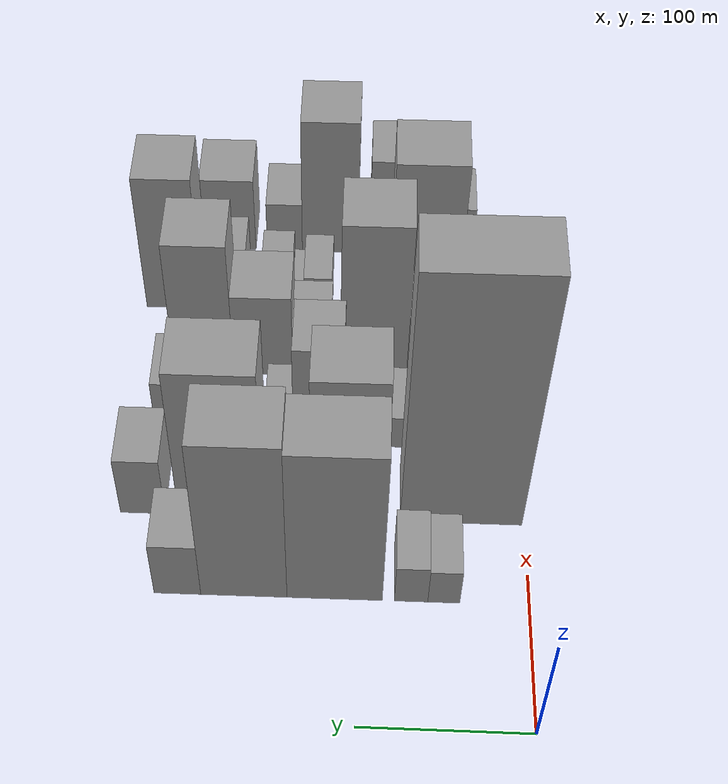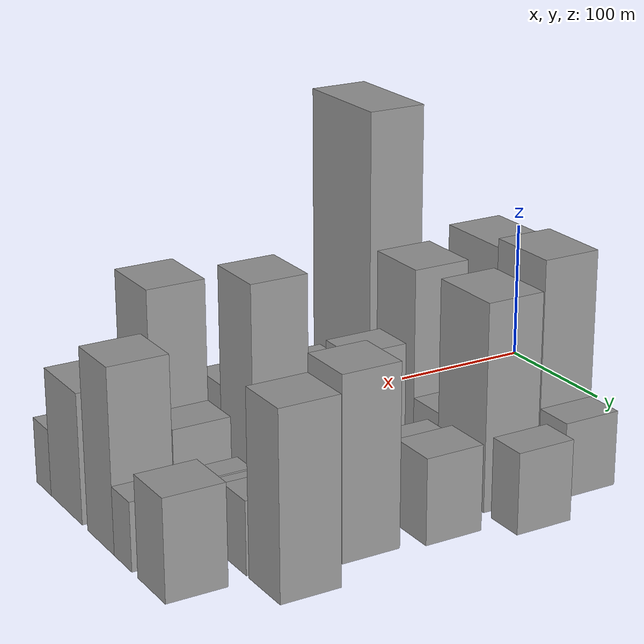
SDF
<sdf version="1.6">
 <world name="default">
  <model name="building_23">
   <static>1</static>
   <pose>100.0000 49.8921 0 0.000000 0.000000 0.000000</pose>
   <link name="link">
    <pose>0 0 16.50 0 0 0</pose>
    <collision name="collision"><geometry><box><size>40.0000 18.6336 33.0000</size></box></geometry></collision>
    <visual name="visual">
     <cast_shadows>0</cast_shadows>
     <geometry><box><size>40.0000 18.6336 33.0000</size></box></geometry>
     <material>
      <script>
       <uri>model://grey_wall/materials/scripts</uri>
       <uri>model://grey_wall/materials/textures</uri>
       <name>vrc/grey_wall</name>
      </script>
     </material>
    </visual>
   </link>
  </model>
  <model name="building_24">
   <static>1</static>
   <pose>100.0000 68.9714 0 0.000000 0.000000 0.000000</pose>
   <link name="link">
    <pose>0 0 18.00 0 0 0</pose>
    <collision name="collision"><geometry><box><size>40.0000 19.5249 36.0000</size></box></geometry></collision>
    <visual name="visual">
     <cast_shadows>0</cast_shadows>
     <geometry><box><size>40.0000 19.5249 36.0000</size></box></geometry>
     <material>
      <script>
       <uri>model://grey_wall/materials/scripts</uri>
       <uri>model://grey_wall/materials/textures</uri>
       <name>vrc/grey_wall</name>
      </script>
     </material>
    </visual>
   </link>
  </model>
  <model name="building_25">
   <static>1</static>
   <pose>100.0000 113.5776 0 0.000000 0.000000 0.000000</pose>
   <link name="link">
    <pose>0 0 72.00 0 0 0</pose>
    <collision name="collision"><geometry><box><size>40.0000 55.6874 144.0000</size></box></geometry></collision>
    <visual name="visual">
     <cast_shadows>0</cast_shadows>
     <geometry><box><size>40.0000 55.6874 144.0000</size></box></geometry>
     <material>
      <script>
       <uri>model://grey_wall/materials/scripts</uri>
       <uri>model://grey_wall/materials/textures</uri>
       <name>vrc/grey_wall</name>
      </script>
     </material>
    </visual>
   </link>
  </model>
  <model name="building_26">
   <static>1</static>
   <pose>100.0000 166.6663 0 0.000000 0.000000 0.000000</pose>
   <link name="link">
    <pose>0 0 75.00 0 0 0</pose>
    <collision name="collision"><geometry><box><size>40.0000 50.4901 150.0000</size></box></geometry></collision>
    <visual name="visual">
     <cast_shadows>0</cast_shadows>
     <geometry><box><size>40.0000 50.4901 150.0000</size></box></geometry>
     <material>
      <script>
       <uri>model://grey_wall/materials/scripts</uri>
       <uri>model://grey_wall/materials/textures</uri>
       <name>vrc/grey_wall</name>
      </script>
     </material>
    </visual>
   </link>
  </model>
  <model name="building_27">
   <static>1</static>
   <pose>100.0000 205.6077 0 0.000000 0.000000 0.000000</pose>
   <link name="link">
    <pose>0 0 25.50 0 0 0</pose>
    <collision name="collision"><geometry><box><size>40.0000 27.3926 51.0000</size></box></geometry></collision>
    <visual name="visual">
     <cast_shadows>0</cast_shadows>
     <geometry><box><size>40.0000 27.3926 51.0000</size></box></geometry>
     <material>
      <script>
       <uri>model://grey_wall/materials/scripts</uri>
       <uri>model://grey_wall/materials/textures</uri>
       <name>vrc/grey_wall</name>
      </script>
     </material>
    </visual>
   </link>
  </model>
  <model name="building_70">
   <static>1</static>
   <pose>155.0000 38.9097 0 0.000000 0.000000 0.000000</pose>
   <link name="link">
    <pose>0 0 112.50 0 0 0</pose>
    <collision name="collision"><geometry><box><size>40.0000 73.7201 225.0000</size></box></geometry></collision>
    <visual name="visual">
     <cast_shadows>0</cast_shadows>
     <geometry><box><size>40.0000 73.7201 225.0000</size></box></geometry>
     <material>
      <script>
       <uri>model://grey_wall/materials/scripts</uri>
       <uri>model://grey_wall/materials/textures</uri>
       <name>vrc/grey_wall</name>
      </script>
     </material>
    </visual>
   </link>
  </model>
  <model name="building_71">
   <static>1</static>
   <pose>155.0000 107.3649 0 0.000000 0.000000 0.000000</pose>
   <link name="link">
    <pose>0 0 67.50 0 0 0</pose>
    <collision name="collision"><geometry><box><size>40.0000 45.1902 135.0000</size></box></geometry></collision>
    <visual name="visual">
     <cast_shadows>0</cast_shadows>
     <geometry><box><size>40.0000 45.1902 135.0000</size></box></geometry>
     <material>
      <script>
       <uri>model://grey_wall/materials/scripts</uri>
       <uri>model://grey_wall/materials/textures</uri>
       <name>vrc/grey_wall</name>
      </script>
     </material>
    </visual>
   </link>
  </model>
  <model name="building_72">
   <static>1</static>
   <pose>155.0000 144.3162 0 0.000000 0.000000 0.000000</pose>
   <link name="link">
    <pose>0 0 24.00 0 0 0</pose>
    <collision name="collision"><geometry><box><size>40.0000 28.7124 48.0000</size></box></geometry></collision>
    <visual name="visual">
     <cast_shadows>0</cast_shadows>
     <geometry><box><size>40.0000 28.7124 48.0000</size></box></geometry>
     <material>
      <script>
       <uri>model://grey_wall/materials/scripts</uri>
       <uri>model://grey_wall/materials/textures</uri>
       <name>vrc/grey_wall</name>
      </script>
     </material>
    </visual>
   </link>
  </model>
  <model name="building_73">
   <static>1</static>
   <pose>155.0000 184.5461 0 0.000000 0.000000 0.000000</pose>
   <link name="link">
    <pose>0 0 69.00 0 0 0</pose>
    <collision name="collision"><geometry><box><size>40.0000 51.7474 138.0000</size></box></geometry></collision>
    <visual name="visual">
     <cast_shadows>0</cast_shadows>
     <geometry><box><size>40.0000 51.7474 138.0000</size></box></geometry>
     <material>
      <script>
       <uri>model://grey_wall/materials/scripts</uri>
       <uri>model://grey_wall/materials/textures</uri>
       <name>vrc/grey_wall</name>
      </script>
     </material>
    </visual>
   </link>
  </model>
  <model name="building_74">
   <static>1</static>
   <pose>155.0000 232.0547 0 0.000000 0.000000 0.000000</pose>
   <link name="link">
    <pose>0 0 27.00 0 0 0</pose>
    <collision name="collision"><geometry><box><size>40.0000 27.2698 54.0000</size></box></geometry></collision>
    <visual name="visual">
     <cast_shadows>0</cast_shadows>
     <geometry><box><size>40.0000 27.2698 54.0000</size></box></geometry>
     <material>
      <script>
       <uri>model://grey_wall/materials/scripts</uri>
       <uri>model://grey_wall/materials/textures</uri>
       <name>vrc/grey_wall</name>
      </script>
     </material>
    </visual>
   </link>
  </model>
  <model name="building_119">
   <static>1</static>
   <pose>210.0000 31.9395 0 0.000000 0.000000 0.000000</pose>
   <link name="link">
    <pose>0 0 10.50 0 0 0</pose>
    <collision name="collision"><geometry><box><size>40.0000 8.4840 21.0000</size></box></geometry></collision>
    <visual name="visual">
     <cast_shadows>0</cast_shadows>
     <geometry><box><size>40.0000 8.4840 21.0000</size></box></geometry>
     <material>
      <script>
       <uri>model://grey_wall/materials/scripts</uri>
       <uri>model://grey_wall/materials/textures</uri>
       <name>vrc/grey_wall</name>
      </script>
     </material>
    </visual>
   </link>
  </model>
  <model name="building_120">
   <static>1</static>
   <pose>210.0000 50.5265 0 0.000000 0.000000 0.000000</pose>
   <link name="link">
    <pose>0 0 28.50 0 0 0</pose>
    <collision name="collision"><geometry><box><size>40.0000 28.6899 57.0000</size></box></geometry></collision>
    <visual name="visual">
     <cast_shadows>0</cast_shadows>
     <geometry><box><size>40.0000 28.6899 57.0000</size></box></geometry>
     <material>
      <script>
       <uri>model://grey_wall/materials/scripts</uri>
       <uri>model://grey_wall/materials/textures</uri>
       <name>vrc/grey_wall</name>
      </script>
     </material>
    </visual>
   </link>
  </model>
  <model name="building_121">
   <static>1</static>
   <pose>210.0000 67.8872 0 0.000000 0.000000 0.000000</pose>
   <link name="link">
    <pose>0 0 7.50 0 0 0</pose>
    <collision name="collision"><geometry><box><size>40.0000 6.0315 15.0000</size></box></geometry></collision>
    <visual name="visual">
     <cast_shadows>0</cast_shadows>
     <geometry><box><size>40.0000 6.0315 15.0000</size></box></geometry>
     <material>
      <script>
       <uri>model://grey_wall/materials/scripts</uri>
       <uri>model://grey_wall/materials/textures</uri>
       <name>vrc/grey_wall</name>
      </script>
     </material>
    </visual>
   </link>
  </model>
  <model name="building_122">
   <static>1</static>
   <pose>210.0000 79.7839 0 0.000000 0.000000 0.000000</pose>
   <link name="link">
    <pose>0 0 15.00 0 0 0</pose>
    <collision name="collision"><geometry><box><size>40.0000 17.7620 30.0000</size></box></geometry></collision>
    <visual name="visual">
     <cast_shadows>0</cast_shadows>
     <geometry><box><size>40.0000 17.7620 30.0000</size></box></geometry>
     <material>
      <script>
       <uri>model://grey_wall/materials/scripts</uri>
       <uri>model://grey_wall/materials/textures</uri>
       <name>vrc/grey_wall</name>
      </script>
     </material>
    </visual>
   </link>
  </model>
  <model name="building_123">
   <static>1</static>
   <pose>210.0000 100.3400 0 0.000000 0.000000 0.000000</pose>
   <link name="link">
    <pose>0 0 22.50 0 0 0</pose>
    <collision name="collision"><geometry><box><size>40.0000 23.3502 45.0000</size></box></geometry></collision>
    <visual name="visual">
     <cast_shadows>0</cast_shadows>
     <geometry><box><size>40.0000 23.3502 45.0000</size></box></geometry>
     <material>
      <script>
       <uri>model://grey_wall/materials/scripts</uri>
       <uri>model://grey_wall/materials/textures</uri>
       <name>vrc/grey_wall</name>
      </script>
     </material>
    </visual>
   </link>
  </model>
  <model name="building_124">
   <static>1</static>
   <pose>210.0000 127.5048 0 0.000000 0.000000 0.000000</pose>
   <link name="link">
    <pose>0 0 46.50 0 0 0</pose>
    <collision name="collision"><geometry><box><size>40.0000 30.9794 93.0000</size></box></geometry></collision>
    <visual name="visual">
     <cast_shadows>0</cast_shadows>
     <geometry><box><size>40.0000 30.9794 93.0000</size></box></geometry>
     <material>
      <script>
       <uri>model://grey_wall/materials/scripts</uri>
       <uri>model://grey_wall/materials/textures</uri>
       <name>vrc/grey_wall</name>
      </script>
     </material>
    </visual>
   </link>
  </model>
  <model name="building_125">
   <static>1</static>
   <pose>210.0000 151.8502 0 0.000000 0.000000 0.000000</pose>
   <link name="link">
    <pose>0 0 15.00 0 0 0</pose>
    <collision name="collision"><geometry><box><size>40.0000 17.7114 30.0000</size></box></geometry></collision>
    <visual name="visual">
     <cast_shadows>0</cast_shadows>
     <geometry><box><size>40.0000 17.7114 30.0000</size></box></geometry>
     <material>
      <script>
       <uri>model://grey_wall/materials/scripts</uri>
       <uri>model://grey_wall/materials/textures</uri>
       <name>vrc/grey_wall</name>
      </script>
     </material>
    </visual>
   </link>
  </model>
  <model name="building_126">
   <static>1</static>
   <pose>210.0000 182.2694 0 0.000000 0.000000 0.000000</pose>
   <link name="link">
    <pose>0 0 25.50 0 0 0</pose>
    <collision name="collision"><geometry><box><size>40.0000 27.1270 51.0000</size></box></geometry></collision>
    <visual name="visual">
     <cast_shadows>0</cast_shadows>
     <geometry><box><size>40.0000 27.1270 51.0000</size></box></geometry>
     <material>
      <script>
       <uri>model://grey_wall/materials/scripts</uri>
       <uri>model://grey_wall/materials/textures</uri>
       <name>vrc/grey_wall</name>
      </script>
     </material>
    </visual>
   </link>
  </model>
  <model name="building_127">
   <static>1</static>
   <pose>210.0000 212.5537 0 0.000000 0.000000 0.000000</pose>
   <link name="link">
    <pose>0 0 28.50 0 0 0</pose>
    <collision name="collision"><geometry><box><size>40.0000 33.4415 57.0000</size></box></geometry></collision>
    <visual name="visual">
     <cast_shadows>0</cast_shadows>
     <geometry><box><size>40.0000 33.4415 57.0000</size></box></geometry>
     <material>
      <script>
       <uri>model://grey_wall/materials/scripts</uri>
       <uri>model://grey_wall/materials/textures</uri>
       <name>vrc/grey_wall</name>
      </script>
     </material>
    </visual>
   </link>
  </model>
  <model name="building_173">
   <static>1</static>
   <pose>265.0000 56.0474 0 0.000000 0.000000 0.000000</pose>
   <link name="link">
    <pose>0 0 30.00 0 0 0</pose>
    <collision name="collision"><geometry><box><size>40.0000 32.6725 60.0000</size></box></geometry></collision>
    <visual name="visual">
     <cast_shadows>0</cast_shadows>
     <geometry><box><size>40.0000 32.6725 60.0000</size></box></geometry>
     <material>
      <script>
       <uri>model://grey_wall/materials/scripts</uri>
       <uri>model://grey_wall/materials/textures</uri>
       <name>vrc/grey_wall</name>
      </script>
     </material>
    </visual>
   </link>
  </model>
  <model name="building_174">
   <static>1</static>
   <pose>265.0000 93.9438 0 0.000000 0.000000 0.000000</pose>
   <link name="link">
    <pose>0 0 70.50 0 0 0</pose>
    <collision name="collision"><geometry><box><size>40.0000 43.1202 141.0000</size></box></geometry></collision>
    <visual name="visual">
     <cast_shadows>0</cast_shadows>
     <geometry><box><size>40.0000 43.1202 141.0000</size></box></geometry>
     <material>
      <script>
       <uri>model://grey_wall/materials/scripts</uri>
       <uri>model://grey_wall/materials/textures</uri>
       <name>vrc/grey_wall</name>
      </script>
     </material>
    </visual>
   </link>
  </model>
  <model name="building_175">
   <static>1</static>
   <pose>265.0000 133.9131 0 0.000000 0.000000 0.000000</pose>
   <link name="link">
    <pose>0 0 24.00 0 0 0</pose>
    <collision name="collision"><geometry><box><size>40.0000 24.8184 48.0000</size></box></geometry></collision>
    <visual name="visual">
     <cast_shadows>0</cast_shadows>
     <geometry><box><size>40.0000 24.8184 48.0000</size></box></geometry>
     <material>
      <script>
       <uri>model://grey_wall/materials/scripts</uri>
       <uri>model://grey_wall/materials/textures</uri>
       <name>vrc/grey_wall</name>
      </script>
     </material>
    </visual>
   </link>
  </model>
  <model name="building_176">
   <static>1</static>
   <pose>265.0000 165.4641 0 0.000000 0.000000 0.000000</pose>
   <link name="link">
    <pose>0 0 37.50 0 0 0</pose>
    <collision name="collision"><geometry><box><size>40.0000 38.2837 75.0000</size></box></geometry></collision>
    <visual name="visual">
     <cast_shadows>0</cast_shadows>
     <geometry><box><size>40.0000 38.2837 75.0000</size></box></geometry>
     <material>
      <script>
       <uri>model://grey_wall/materials/scripts</uri>
       <uri>model://grey_wall/materials/textures</uri>
       <name>vrc/grey_wall</name>
      </script>
     </material>
    </visual>
   </link>
  </model>
  <model name="building_177">
   <static>1</static>
   <pose>265.0000 204.1315 0 0.000000 0.000000 0.000000</pose>
   <link name="link">
    <pose>0 0 60.00 0 0 0</pose>
    <collision name="collision"><geometry><box><size>40.0000 39.0511 120.0000</size></box></geometry></collision>
    <visual name="visual">
     <cast_shadows>0</cast_shadows>
     <geometry><box><size>40.0000 39.0511 120.0000</size></box></geometry>
     <material>
      <script>
       <uri>model://grey_wall/materials/scripts</uri>
       <uri>model://grey_wall/materials/textures</uri>
       <name>vrc/grey_wall</name>
      </script>
     </material>
    </visual>
   </link>
  </model>
  <model name="building_222">
   <static>1</static>
   <pose>320.0000 29.7980 0 0.000000 0.000000 0.000000</pose>
   <link name="link">
    <pose>0 0 16.50 0 0 0</pose>
    <collision name="collision"><geometry><box><size>40.0000 17.9934 33.0000</size></box></geometry></collision>
    <visual name="visual">
     <cast_shadows>0</cast_shadows>
     <geometry><box><size>40.0000 17.9934 33.0000</size></box></geometry>
     <material>
      <script>
       <uri>model://grey_wall/materials/scripts</uri>
       <uri>model://grey_wall/materials/textures</uri>
       <name>vrc/grey_wall</name>
      </script>
     </material>
    </visual>
   </link>
  </model>
  <model name="building_223">
   <static>1</static>
   <pose>320.0000 61.4986 0 0.000000 0.000000 0.000000</pose>
   <link name="link">
    <pose>0 0 69.00 0 0 0</pose>
    <collision name="collision"><geometry><box><size>40.0000 45.4077 138.0000</size></box></geometry></collision>
    <visual name="visual">
     <cast_shadows>0</cast_shadows>
     <geometry><box><size>40.0000 45.4077 138.0000</size></box></geometry>
     <material>
      <script>
       <uri>model://grey_wall/materials/scripts</uri>
       <uri>model://grey_wall/materials/textures</uri>
       <name>vrc/grey_wall</name>
      </script>
     </material>
    </visual>
   </link>
  </model>
  <model name="building_224">
   <static>1</static>
   <pose>320.0000 99.4336 0 0.000000 0.000000 0.000000</pose>
   <link name="link">
    <pose>0 0 28.50 0 0 0</pose>
    <collision name="collision"><geometry><box><size>40.0000 30.4624 57.0000</size></box></geometry></collision>
    <visual name="visual">
     <cast_shadows>0</cast_shadows>
     <geometry><box><size>40.0000 30.4624 57.0000</size></box></geometry>
     <material>
      <script>
       <uri>model://grey_wall/materials/scripts</uri>
       <uri>model://grey_wall/materials/textures</uri>
       <name>vrc/grey_wall</name>
      </script>
     </material>
    </visual>
   </link>
  </model>
  <model name="building_225">
   <static>1</static>
   <pose>320.0000 132.0728 0 0.000000 0.000000 0.000000</pose>
   <link name="link">
    <pose>0 0 16.50 0 0 0</pose>
    <collision name="collision"><geometry><box><size>40.0000 18.8159 33.0000</size></box></geometry></collision>
    <visual name="visual">
     <cast_shadows>0</cast_shadows>
     <geometry><box><size>40.0000 18.8159 33.0000</size></box></geometry>
     <material>
      <script>
       <uri>model://grey_wall/materials/scripts</uri>
       <uri>model://grey_wall/materials/textures</uri>
       <name>vrc/grey_wall</name>
      </script>
     </material>
    </visual>
   </link>
  </model>
  <model name="building_226">
   <static>1</static>
   <pose>320.0000 145.2873 0 0.000000 0.000000 0.000000</pose>
   <link name="link">
    <pose>0 0 9.00 0 0 0</pose>
    <collision name="collision"><geometry><box><size>40.0000 7.6131 18.0000</size></box></geometry></collision>
    <visual name="visual">
     <cast_shadows>0</cast_shadows>
     <geometry><box><size>40.0000 7.6131 18.0000</size></box></geometry>
     <material>
      <script>
       <uri>model://grey_wall/materials/scripts</uri>
       <uri>model://grey_wall/materials/textures</uri>
       <name>vrc/grey_wall</name>
      </script>
     </material>
    </visual>
   </link>
  </model>
  <model name="building_227">
   <static>1</static>
   <pose>320.0000 159.4830 0 0.000000 0.000000 0.000000</pose>
   <link name="link">
    <pose>0 0 18.00 0 0 0</pose>
    <collision name="collision"><geometry><box><size>40.0000 20.7784 36.0000</size></box></geometry></collision>
    <visual name="visual">
     <cast_shadows>0</cast_shadows>
     <geometry><box><size>40.0000 20.7784 36.0000</size></box></geometry>
     <material>
      <script>
       <uri>model://grey_wall/materials/scripts</uri>
       <uri>model://grey_wall/materials/textures</uri>
       <name>vrc/grey_wall</name>
      </script>
     </material>
    </visual>
   </link>
  </model>
  <model name="building_228">
   <static>1</static>
   <pose>320.0000 193.7207 0 0.000000 0.000000 0.000000</pose>
   <link name="link">
    <pose>0 0 24.00 0 0 0</pose>
    <collision name="collision"><geometry><box><size>40.0000 27.6970 48.0000</size></box></geometry></collision>
    <visual name="visual">
     <cast_shadows>0</cast_shadows>
     <geometry><box><size>40.0000 27.6970 48.0000</size></box></geometry>
     <material>
      <script>
       <uri>model://grey_wall/materials/scripts</uri>
       <uri>model://grey_wall/materials/textures</uri>
       <name>vrc/grey_wall</name>
      </script>
     </material>
    </visual>
   </link>
  </model>
  <model name="building_229">
   <static>1</static>
   <pose>320.0000 229.1163 0 0.000000 0.000000 0.000000</pose>
   <link name="link">
    <pose>0 0 60.00 0 0 0</pose>
    <collision name="collision"><geometry><box><size>40.0000 37.0941 120.0000</size></box></geometry></collision>
    <visual name="visual">
     <cast_shadows>0</cast_shadows>
     <geometry><box><size>40.0000 37.0941 120.0000</size></box></geometry>
     <material>
      <script>
       <uri>model://grey_wall/materials/scripts</uri>
       <uri>model://grey_wall/materials/textures</uri>
       <name>vrc/grey_wall</name>
      </script>
     </material>
    </visual>
   </link>
  </model>
  <model name="building_278">
   <static>1</static>
   <pose>375.0000 38.5461 0 0.000000 0.000000 0.000000</pose>
   <link name="link">
    <pose>0 0 22.50 0 0 0</pose>
    <collision name="collision"><geometry><box><size>40.0000 23.4415 45.0000</size></box></geometry></collision>
    <visual name="visual">
     <cast_shadows>0</cast_shadows>
     <geometry><box><size>40.0000 23.4415 45.0000</size></box></geometry>
     <material>
      <script>
       <uri>model://grey_wall/materials/scripts</uri>
       <uri>model://grey_wall/materials/textures</uri>
       <name>vrc/grey_wall</name>
      </script>
     </material>
    </visual>
   </link>
  </model>
  <model name="building_279">
   <static>1</static>
   <pose>375.0000 74.3995 0 0.000000 0.000000 0.000000</pose>
   <link name="link">
    <pose>0 0 43.50 0 0 0</pose>
    <collision name="collision"><geometry><box><size>40.0000 48.2653 87.0000</size></box></geometry></collision>
    <visual name="visual">
     <cast_shadows>0</cast_shadows>
     <geometry><box><size>40.0000 48.2653 87.0000</size></box></geometry>
     <material>
      <script>
       <uri>model://grey_wall/materials/scripts</uri>
       <uri>model://grey_wall/materials/textures</uri>
       <name>vrc/grey_wall</name>
      </script>
     </material>
    </visual>
   </link>
  </model>
  <model name="building_280">
   <static>1</static>
   <pose>375.0000 125.8167 0 0.000000 0.000000 0.000000</pose>
   <link name="link">
    <pose>0 0 60.00 0 0 0</pose>
    <collision name="collision"><geometry><box><size>40.0000 38.5692 120.0000</size></box></geometry></collision>
    <visual name="visual">
     <cast_shadows>0</cast_shadows>
     <geometry><box><size>40.0000 38.5692 120.0000</size></box></geometry>
     <material>
      <script>
       <uri>model://grey_wall/materials/scripts</uri>
       <uri>model://grey_wall/materials/textures</uri>
       <name>vrc/grey_wall</name>
      </script>
     </material>
    </visual>
   </link>
  </model>
  <model name="building_281">
   <static>1</static>
   <pose>375.0000 157.2744 0 0.000000 0.000000 0.000000</pose>
   <link name="link">
    <pose>0 0 22.50 0 0 0</pose>
    <collision name="collision"><geometry><box><size>40.0000 24.3463 45.0000</size></box></geometry></collision>
    <visual name="visual">
     <cast_shadows>0</cast_shadows>
     <geometry><box><size>40.0000 24.3463 45.0000</size></box></geometry>
     <material>
      <script>
       <uri>model://grey_wall/materials/scripts</uri>
       <uri>model://grey_wall/materials/textures</uri>
       <name>vrc/grey_wall</name>
      </script>
     </material>
    </visual>
   </link>
  </model>
  <model name="building_282">
   <static>1</static>
   <pose>375.0000 195.5981 0 0.000000 0.000000 0.000000</pose>
   <link name="link">
    <pose>0 0 33.00 0 0 0</pose>
    <collision name="collision"><geometry><box><size>40.0000 36.3010 66.0000</size></box></geometry></collision>
    <visual name="visual">
     <cast_shadows>0</cast_shadows>
     <geometry><box><size>40.0000 36.3010 66.0000</size></box></geometry>
     <material>
      <script>
       <uri>model://grey_wall/materials/scripts</uri>
       <uri>model://grey_wall/materials/textures</uri>
       <name>vrc/grey_wall</name>
      </script>
     </material>
    </visual>
   </link>
  </model>
 </world>
</sdf>
